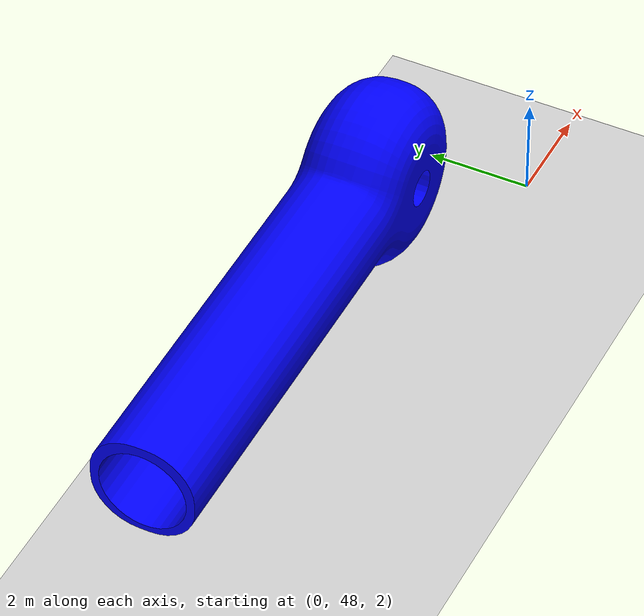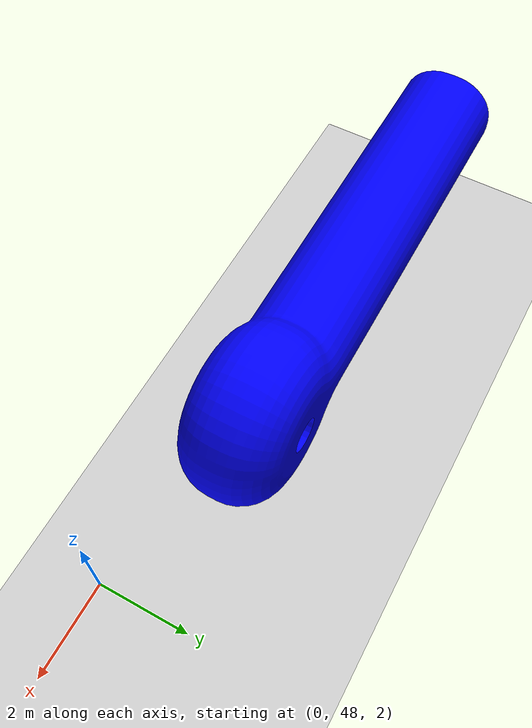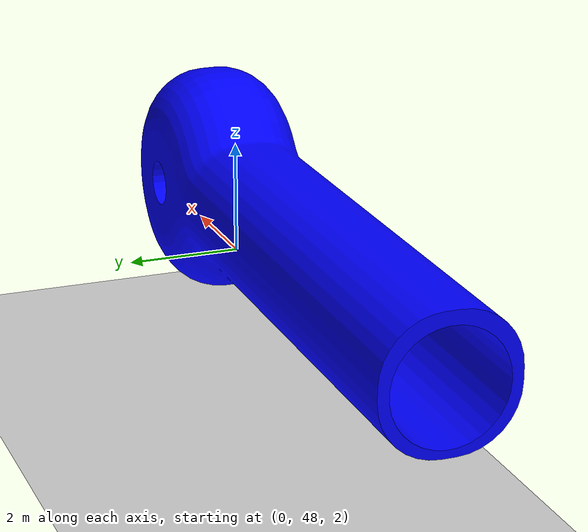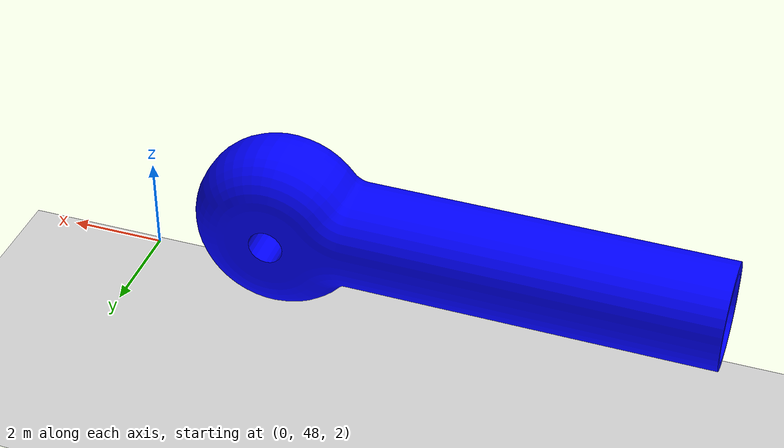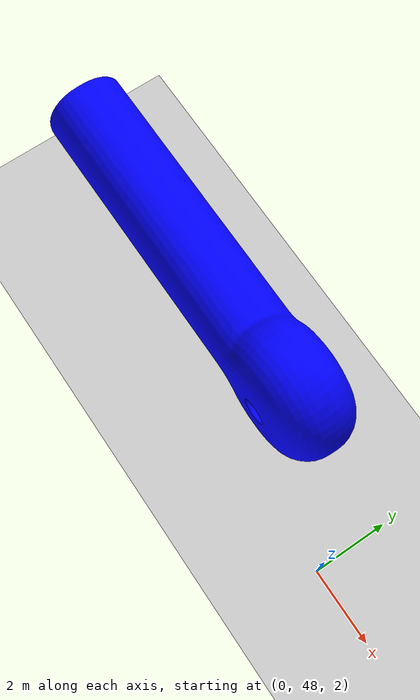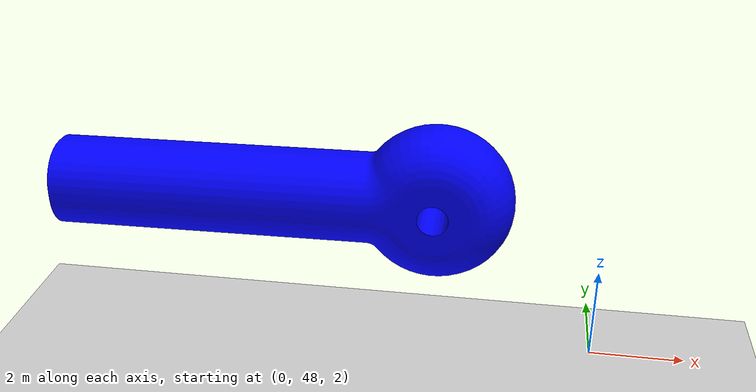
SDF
<?xml version="1.0" ?>
<sdf version="1.8">
<world name="car_world">
        <physics name="1ms" type="ignored">
            <max_step_size>0.001</max_step_size>
            <real_time_factor>1.0</real_time_factor>
        </physics>
        <plugin
            filename="libignition-gazebo-physics-system.so"
            name="ignition::gazebo::systems::Physics">
        </plugin>
        <plugin
            filename="libignition-gazebo-user-commands-system.so"
            name="ignition::gazebo::systems::UserCommands">
        </plugin>
        <plugin
            filename="libignition-gazebo-scene-broadcaster-system.so"
            name="ignition::gazebo::systems::SceneBroadcaster">
        </plugin>

        <light type="directional" name="sun">
            <cast_shadows>true</cast_shadows>
            <pose>0 0 10 0 0 0</pose>
            <diffuse>0.8 0.8 0.8 1</diffuse>
            <specular>0.2 0.2 0.2 1</specular>
            <attenuation>
                <range>1000</range>
                <constant>0.9</constant>
                <linear>0.01</linear>
                <quadratic>0.001</quadratic>
            </attenuation>
            <direction>-0.5 0.1 -0.9</direction>
        </light>

        <model name="ground_plane">
            <static>true</static>
            <link name="link">
                <collision name="collision">
                <geometry>
                    <plane>
                    <normal>0 0 1</normal>
                    </plane>
                </geometry>
                </collision>
                <visual name="visual">
                <geometry>
                    <plane>
                    <normal>0 0 1</normal>
                    <size>100 100</size>
                    </plane>
                </geometry>
                <material>
                    <ambient>0.8 0.8 0.8 1</ambient>
                    <diffuse>0.8 0.8 0.8 1</diffuse>
                    <specular>0.8 0.8 0.8 1</specular>
                </material>
                </visual>
            </link>
        </model>

        <model name="fin_mechanism">

    <pose>0 0 0 0 0 0</pose>

    <link name="input_bar_2">

    <pose relative_to='__model__'>0.03603 -0.491385 -0.04691 0 0 0</pose>

    <inertial>
      <mass>0.046</mass>
      <inertia>
        <ixx>29.25</ixx>
        <ixy>-0.01254</ixy>
        <ixz>10.80994</ixz>
        <iyy>528.1595</iyy>
        <iyz>0.0064</iyz>
        <izz>521.5771</izz>
      </inertia>
    </inertial>

    <visual name="input_bar_2_visual">
      <geometry>
        <mesh>
          <scale>0.1 0.1 0.1</scale>
          <uri>/home/alberto/tfg/ignition_codes/fin_mechanism_description_sdf/meshes/input_bar_2_1.stl</uri>
        </mesh>
      </geometry>
        <material>
            <ambient>0.0 0.0 1.0 1</ambient>
            <diffuse>0.0 0.0 1.0 1</diffuse>
            <specular>0.0 0.0 1.0 1</specular>
        </material>
    </visual>

    <collision name="input_bar_2_collision">
      <geometry>
        <mesh>
          <scale>1 1 1</scale>
          <uri>meshes/input_bar_2_1.stl</uri>
        </mesh>
      </geometry>
    </collision>

  </link>

</model>
</world>

</sdf>
